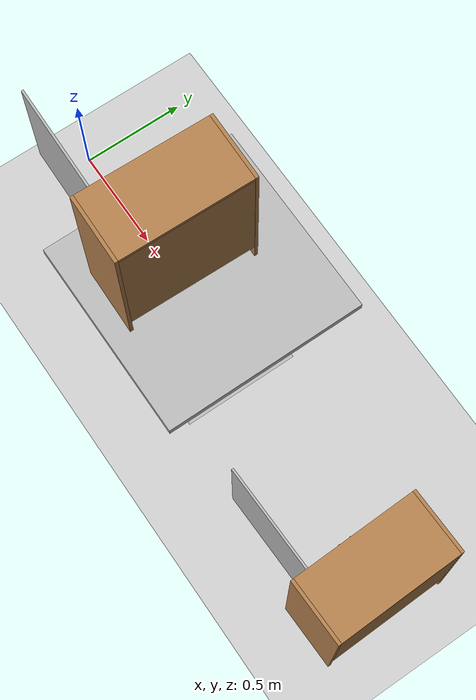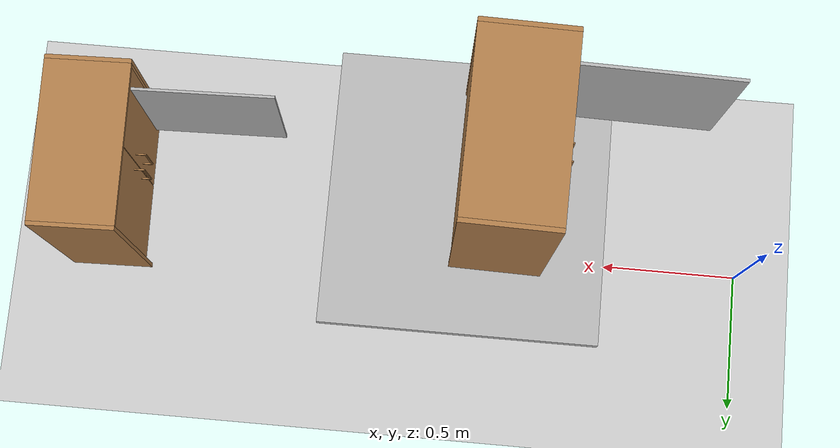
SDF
<sdf version="1.6">
 <world name="default">
  <light name="sun" type="directional">
   <pose>0 0 10 0 -0 0</pose>
   <diffuse>0.8 0.8 0.8 1</diffuse>
   <specular>0.2 0.2 0.2 1</specular>
   <attenuation>
    <range>1000</range>
    <constant>0.9</constant>
    <linear>0.01</linear>
    <quadratic>0.001</quadratic>
   </attenuation>
   <direction>-0.5 0.1 -0.9</direction>
  </light>
  <physics name="dart_2ms" default="1" type="dart">
   <max_step_size>0.002</max_step_size>
   <real_time_factor>1</real_time_factor>
   <real_time_update_rate>500</real_time_update_rate>
  </physics>
  <model name="ground_plane">
   <static>1</static>
   <link name="link">
    <collision name="collision">
     <geometry><plane><normal>0 0 1</normal><size>100 100</size></plane></geometry>
     <surface>
      <contact><collide_bitmask>65535</collide_bitmask></contact>
      <friction><ode><mu>100</mu><mu2>50</mu2></ode></friction>
     </surface>
    </collision>
    <visual name="visual">
     <cast_shadows>0</cast_shadows>
     <geometry><plane><normal>0 0 1</normal><size>100 100</size></plane></geometry>
     <material>
      <script><uri>file://media/materials/scripts/gazebo.material</uri><name>Gazebo/Grey</name></script>
     </material>
    </visual>
   </link>
  </model>
  <gravity>0 0 -9.8</gravity>
  <magnetic_field>6e-06 2.3e-05 -4.2e-05</magnetic_field>
  <atmosphere type="adiabatic"/>
  <scene><ambient>0.4 0.4 0.4 1</ambient><background>0.7 0.7 0.7 1</background><shadows>1</shadows></scene>
  <audio><device>default</device></audio>
  <spherical_coordinates>
   <surface_model>EARTH_WGS84</surface_model>
   <latitude_deg>0</latitude_deg>
   <longitude_deg>0</longitude_deg>
   <elevation>0</elevation>
   <heading_deg>0</heading_deg>
  </spherical_coordinates>
  <model name="cafe_table">
   <static>1</static>
   <link name="link">
    <collision name="surface">
     <pose>0 0 0.755 0 -0 0</pose>
     <geometry><box><size>0.913 0.913 0.04</size></box></geometry>
    </collision>
    <collision name="column">
     <pose>0 0 0.37 0 -0 0</pose>
     <geometry><box><size>0.042 0.042 0.74</size></box></geometry>
    </collision>
    <collision name="base">
     <pose>0 0 0.02 0 -0 0</pose>
     <geometry><box><size>0.56 0.56 0.04</size></box></geometry>
    </collision>
    <visual name="visual">
     <geometry><mesh><uri>model://cafe_table/meshes/cafe_table.dae</uri></mesh></geometry>
    </visual>
   </link>
   <pose>1.06301 -0.05066 0 0 -0 0</pose>
  </model>
  <model name="cabinet_door_fragile">
   <plugin name="BreakableJoint" filename="libbreakable_joint.so">
    <joint_name>right_handle_joint</joint_name>
    <pos_min>-0.05</pos_min>
    <pos_max>0.05</pos_max>
   </plugin>
   <plugin name="BreakableJoint" filename="libbreakable_joint.so">
    <joint_name>right_handle_joint2</joint_name>
    <pos_min>-0.05</pos_min>
    <pos_max>0.05</pos_max>
   </plugin>
   <plugin name="BreakableJoint" filename="libbreakable_joint.so">
    <joint_name>left_handle_joint</joint_name>
    <pos_min>-0.05</pos_min>
    <pos_max>0.05</pos_max>
   </plugin>
   <plugin name="BreakableJoint" filename="libbreakable_joint.so">
    <joint_name>left_handle_joint2</joint_name>
    <pos_min>-0.05</pos_min>
    <pos_max>0.05</pos_max>
   </plugin>
   <link name="cabinet">
    <pose>0 0 0.35 0 -0 0</pose>
    <inertial>
     <mass>16</mass>
     <inertia><ixx>1.59</ixx><ixy>0</ixy><ixz>0</ixz><iyy>1.12</iyy><iyz>0</iyz><izz>0.91</izz></inertia>
    </inertial>
    <collision name="back">
     <pose>-0.14 0 0.035 0 -0 0</pose>
     <geometry><box><size>0.015 0.585 0.6</size></box></geometry>
    </collision>
    <visual name="visual1">
     <pose>-0.14 0 0.035 0 -0 0</pose>
     <geometry><box><size>0.015 0.585 0.6</size></box></geometry>
     <material>
      <script><uri>file://media/materials/scripts/gazebo.material</uri><name>Gazebo/Wood</name></script>
     </material>
    </visual>
    <collision name="left_side">
     <pose>0 -0.2925 0 0 -0 0</pose>
     <geometry><box><size>0.3 0.015 0.7</size></box></geometry>
    </collision>
    <visual name="visual2">
     <pose>0 -0.2925 0 0 -0 0</pose>
     <geometry><box><size>0.3 0.015 0.7</size></box></geometry>
     <material>
      <script><uri>file://media/materials/scripts/gazebo.material</uri><name>Gazebo/Wood</name></script>
     </material>
    </visual>
    <collision name="right_side">
     <pose>0 0.2925 0 0 -0 0</pose>
     <geometry><box><size>0.3 0.015 0.7</size></box></geometry>
    </collision>
    <visual name="visual3">
     <pose>0 0.2925 0 0 -0 0</pose>
     <geometry><box><size>0.3 0.015 0.7</size></box></geometry>
     <material>
      <script><uri>file://media/materials/scripts/gazebo.material</uri><name>Gazebo/Wood</name></script>
     </material>
    </visual>
    <collision name="bottom">
     <pose>-0.002 0 -0.2525 0 -0 0</pose>
     <geometry><box><size>0.26 0.57 0.015</size></box></geometry>
    </collision>
    <visual name="visual4">
     <pose>-0.002 0 -0.2525 0 -0 0</pose>
     <geometry><box><size>0.26 0.57 0.015</size></box></geometry>
     <material>
      <script><uri>file://media/materials/scripts/gazebo.material</uri><name>Gazebo/Wood</name></script>
     </material>
    </visual>
    <collision name="top">
     <pose>0 0 0.3425 0 -0 0</pose>
     <geometry><box><size>0.3 0.57 0.015</size></box></geometry>
    </collision>
    <visual name="visual5">
     <pose>0 0 0.3425 0 -0 0</pose>
     <geometry><box><size>0.3 0.57 0.015</size></box></geometry>
     <material>
      <script><uri>file://media/materials/scripts/gazebo.material</uri><name>Gazebo/Wood</name></script>
     </material>
    </visual>
    <collision name="middle_shelf">
     <pose>-0.002 0 0.0475 0 -0 0</pose>
     <geometry><box><size>0.26 0.57 0.015</size></box></geometry>
    </collision>
    <visual name="visual6">
     <pose>-0.002 0 0.0475 0 -0 0</pose>
     <geometry><box><size>0.26 0.57 0.015</size></box></geometry>
     <material>
      <script><uri>file://media/materials/scripts/gazebo.material</uri><name>Gazebo/Wood</name></script>
     </material>
    </visual>
    <collision name="low_front">
     <pose>0.115 0 -0.3025 0 -0 0</pose>
     <geometry><box><size>0.015 0.57 0.09</size></box></geometry>
    </collision>
    <visual name="visual7">
     <pose>0.115 0 -0.3025 0 -0 0</pose>
     <geometry><box><size>0.015 0.57 0.09</size></box></geometry>
     <material>
      <script><uri>file://media/materials/scripts/gazebo.material</uri><name>Gazebo/Wood</name></script>
     </material>
    </visual>
   </link>
   <link name="right_door">
    <pose>0.135 0.2835 0.3875 0 -0 0</pose>
    <inertial>
     <mass>1.7</mass>
     <pose>0 -0.141 0 0 -0 0</pose>
     <inertia><ixx>0.06</ixx><ixy>0</ixy><ixz>0</ixz><iyy>0.49</iyy><iyz>0</iyz><izz>0.111</izz></inertia>
    </inertial>
    <collision name="right_face">
     <pose>0 -0.141 0 0 -0 0</pose>
     <geometry><box><size>0.015 0.282 0.595</size></box></geometry>
    </collision>
    <visual name="right_face_vis">
     <pose>0 -0.141 0 0 -0 0</pose>
     <geometry><box><size>0.015 0.282 0.595</size></box></geometry>
     <material>
      <script><uri>file://media/materials/scripts/gazebo.material</uri><name>Gazebo/Wood</name></script>
     </material>
    </visual>
    <collision name="right_handle_up">
     <pose>0.02475 -0.2555 0.0656 0 -0 0</pose>
     <geometry><box><size>0.04 0.005 0.005</size></box></geometry>
    </collision>
    <visual name="right_handle_up_vis">
     <pose>0.02475 -0.2555 0.0656 0 -0 0</pose>
     <geometry><box><size>0.04 0.005 0.005</size></box></geometry>
     <material>
      <script><uri>file://media/materials/scripts/gazebo.material</uri><name>Gazebo/Wood</name></script>
     </material>
    </visual>
    <collision name="right_handle_bo">
     <pose>0.02475 -0.2555 -0.06542 0 -0 0</pose>
     <geometry><box><size>0.04 0.005 0.005</size></box></geometry>
    </collision>
    <visual name="right_handle_bo_vis">
     <pose>0.02475 -0.2555 -0.06542 0 -0 0</pose>
     <geometry><box><size>0.04 0.005 0.005</size></box></geometry>
     <material>
      <script><uri>file://media/materials/scripts/gazebo.material</uri><name>Gazebo/Wood</name></script>
     </material>
    </visual>
    <visual name="visual_marker_0">
     <pose>0.007 -0.07 0 1.57075 0 1.57075</pose>
     <geometry><mesh><uri>model://marker_0/meshes/marker_0.dae</uri></mesh></geometry>
    </visual>
   </link>
   <joint name="right_handle_joint" type="revolute">
    <parent>right_door</parent>
    <child>right_handle_dummy</child>
    <axis>
     <xyz>0 1 0</xyz>
     <limit><lower>-3.1</lower><upper>3.1</upper></limit>
     <dynamics>
      <damping>0.01</damping>
      <friction>1</friction>
      <spring_reference>0</spring_reference>
      <spring_stiffness>0</spring_stiffness>
     </dynamics>
     <use_parent_model_frame>1</use_parent_model_frame>
    </axis>
   </joint>
   <link name="right_handle_dummy">
    <pose>0.17804 0.028 0.3195 0 -0 0</pose>
    <inertial>
     <mass>0.1</mass>
     <pose>0 0 0.068 0 -0 0</pose>
     <inertia>
      <ixx>0.000154133</ixx>
      <ixy>0</ixy>
      <ixz>0</ixz>
      <iyy>0.000154133</iyy>
      <iyz>0</iyz>
      <izz>0.000154133</izz>
     </inertia>
    </inertial>
   </link>
   <joint name="right_handle_joint2" type="revolute">
    <parent>right_handle_dummy</parent>
    <child>right_handle</child>
    <axis>
     <xyz>1 0 0</xyz>
     <limit><lower>-3.1</lower><upper>3.1</upper></limit>
     <dynamics>
      <damping>0.01</damping>
      <friction>1</friction>
      <spring_reference>0</spring_reference>
      <spring_stiffness>0</spring_stiffness>
     </dynamics>
     <use_parent_model_frame>1</use_parent_model_frame>
    </axis>
   </joint>
   <link name="right_handle">
    <pose>0.17804 0.028 0.3195 0 -0 0</pose>
    <inertial>
     <mass>0.1</mass>
     <pose>0 0 0.068 0 -0 0</pose>
     <inertia>
      <ixx>0.000154133</ixx>
      <ixy>0</ixy>
      <ixz>0</ixz>
      <iyy>0.000154133</iyy>
      <iyz>0</iyz>
      <izz>0.000154133</izz>
     </inertia>
    </inertial>
    <collision name="right_handle">
     <pose>0 0 0.068 0 -0 0</pose>
     <geometry><box><size>0.005 0.005 0.136</size></box></geometry>
    </collision>
    <visual name="right_handle_vis">
     <pose>0 0 0.068 0 -0 0</pose>
     <geometry><box><size>0.005 0.005 0.136</size></box></geometry>
     <material>
      <script><uri>file://media/materials/scripts/gazebo.material</uri><name>Gazebo/Wood</name></script>
     </material>
    </visual>
   </link>
   <joint name="right_joint" type="revolute">
    <parent>cabinet</parent>
    <child>right_door</child>
    <axis>
     <xyz>0 0 1</xyz>
     <limit><lower>-0.001</lower><upper>2.36</upper></limit>
     <dynamics>
      <damping>0.5</damping>
      <friction>0.1</friction>
      <spring_reference>0</spring_reference>
      <spring_stiffness>0</spring_stiffness>
     </dynamics>
     <use_parent_model_frame>1</use_parent_model_frame>
    </axis>
   </joint>
   <link name="left_door">
    <pose>0.135 -0.2835 0.3875 0 -0 0</pose>
    <inertial>
     <mass>1</mass>
     <pose>0 0.141 0 0 -0 0</pose>
     <inertia><ixx>0.06</ixx><ixy>0</ixy><ixz>0</ixz><iyy>0.49</iyy><iyz>0</iyz><izz>0.111</izz></inertia>
    </inertial>
    <collision name="left_face">
     <pose>0 0.141 0 0 -0 0</pose>
     <geometry><box><size>0.015 0.282 0.595</size></box></geometry>
    </collision>
    <visual name="left_face_vis">
     <pose>0 0.141 0 0 -0 0</pose>
     <geometry><box><size>0.015 0.282 0.595</size></box></geometry>
     <material>
      <script><uri>file://media/materials/scripts/gazebo.material</uri><name>Gazebo/Wood</name></script>
     </material>
    </visual>
    <collision name="left_handle_up">
     <pose>0.02475 0.2555 0.0656 0 -0 0</pose>
     <geometry><box><size>0.04 0.005 0.005</size></box></geometry>
    </collision>
    <visual name="left_handle_up_vis">
     <pose>0.02475 0.2555 0.0656 0 -0 0</pose>
     <geometry><box><size>0.04 0.005 0.005</size></box></geometry>
     <material>
      <script><uri>file://media/materials/scripts/gazebo.material</uri><name>Gazebo/Wood</name></script>
     </material>
    </visual>
    <collision name="left_handle_bo">
     <pose>0.02475 0.2555 -0.06542 0 -0 0</pose>
     <geometry><box><size>0.04 0.005 0.005</size></box></geometry>
    </collision>
    <visual name="left_handle_bo_vis">
     <pose>0.02475 0.2555 -0.06542 0 -0 0</pose>
     <geometry><box><size>0.04 0.005 0.005</size></box></geometry>
     <material>
      <script><uri>file://media/materials/scripts/gazebo.material</uri><name>Gazebo/Wood</name></script>
     </material>
    </visual>
   </link>
   <joint name="left_joint" type="revolute">
    <parent>cabinet</parent>
    <child>left_door</child>
    <axis>
     <xyz>0 0 1</xyz>
     <limit><lower>-2.36</lower><upper>0.001</upper></limit>
     <dynamics>
      <damping>0.5</damping>
      <friction>0.1</friction>
      <spring_reference>0</spring_reference>
      <spring_stiffness>0</spring_stiffness>
     </dynamics>
     <use_parent_model_frame>1</use_parent_model_frame>
    </axis>
   </joint>
   <joint name="left_handle_joint" type="revolute">
    <parent>left_door</parent>
    <child>left_handle_dummy</child>
    <axis>
     <xyz>0 1 0</xyz>
     <limit><lower>-3.1</lower><upper>3.1</upper></limit>
     <dynamics>
      <damping>0.01</damping>
      <friction>1</friction>
      <spring_reference>0</spring_reference>
      <spring_stiffness>0</spring_stiffness>
     </dynamics>
     <use_parent_model_frame>1</use_parent_model_frame>
    </axis>
   </joint>
   <link name="left_handle_dummy">
    <pose>0.17804 -0.028 0.3195 0 -0 0</pose>
    <inertial>
     <mass>0.1</mass>
     <pose>0 0 0.068 0 -0 0</pose>
     <inertia>
      <ixx>0.000154133</ixx>
      <ixy>0</ixy>
      <ixz>0</ixz>
      <iyy>0.000154133</iyy>
      <iyz>0</iyz>
      <izz>0.000154133</izz>
     </inertia>
    </inertial>
   </link>
   <joint name="left_handle_joint2" type="revolute">
    <parent>left_handle_dummy</parent>
    <child>left_handle</child>
    <axis>
     <xyz>1 0 0</xyz>
     <limit><lower>-3.1</lower><upper>3.1</upper></limit>
     <dynamics>
      <damping>0.01</damping>
      <friction>1</friction>
      <spring_reference>0</spring_reference>
      <spring_stiffness>0</spring_stiffness>
     </dynamics>
     <use_parent_model_frame>1</use_parent_model_frame>
    </axis>
   </joint>
   <link name="left_handle">
    <pose>0.17804 -0.028 0.3195 0 -0 0</pose>
    <inertial>
     <mass>0.1</mass>
     <pose>0 0 0.068 0 -0 0</pose>
     <inertia>
      <ixx>0.000154133</ixx>
      <ixy>0</ixy>
      <ixz>0</ixz>
      <iyy>0.000154133</iyy>
      <iyz>0</iyz>
      <izz>0.000154133</izz>
     </inertia>
    </inertial>
    <collision name="left_handle">
     <pose>0 0 0.068 0 -0 0</pose>
     <geometry><box><size>0.005 0.005 0.136</size></box></geometry>
    </collision>
    <visual name="left_handle_vis">
     <pose>0 0 0.068 0 -0 0</pose>
     <geometry><box><size>0.005 0.005 0.136</size></box></geometry>
     <material>
      <script><uri>file://media/materials/scripts/gazebo.material</uri><name>Gazebo/Wood</name></script>
     </material>
    </visual>
   </link>
   <pose>2.38639 -0.14426 -0 -0 -0 -3.11567</pose>
  </model>
  <model name="cabinet_door">
   <link name="cabinet">
    <pose>0 0 0.35 0 -0 0</pose>
    <inertial>
     <mass>16</mass>
     <inertia><ixx>1.59</ixx><ixy>0</ixy><ixz>0</ixz><iyy>1.12</iyy><iyz>0</iyz><izz>0.91</izz></inertia>
    </inertial>
    <collision name="back">
     <pose>-0.14 0 0.035 0 -0 0</pose>
     <geometry><box><size>0.015 0.585 0.6</size></box></geometry>
    </collision>
    <visual name="visual1">
     <pose>-0.14 0 0.035 0 -0 0</pose>
     <geometry><box><size>0.015 0.585 0.6</size></box></geometry>
     <material>
      <script><uri>file://media/materials/scripts/gazebo.material</uri><name>Gazebo/Wood</name></script>
     </material>
    </visual>
    <collision name="left_side">
     <pose>0 -0.2925 0 0 -0 0</pose>
     <geometry><box><size>0.3 0.015 0.7</size></box></geometry>
    </collision>
    <visual name="visual2">
     <pose>0 -0.2925 0 0 -0 0</pose>
     <geometry><box><size>0.3 0.015 0.7</size></box></geometry>
     <material>
      <script><uri>file://media/materials/scripts/gazebo.material</uri><name>Gazebo/Wood</name></script>
     </material>
    </visual>
    <collision name="right_side">
     <pose>0 0.2925 0 0 -0 0</pose>
     <geometry><box><size>0.3 0.015 0.7</size></box></geometry>
    </collision>
    <visual name="visual3">
     <pose>0 0.2925 0 0 -0 0</pose>
     <geometry><box><size>0.3 0.015 0.7</size></box></geometry>
     <material>
      <script><uri>file://media/materials/scripts/gazebo.material</uri><name>Gazebo/Wood</name></script>
     </material>
    </visual>
    <collision name="bottom">
     <pose>-0.002 0 -0.2525 0 -0 0</pose>
     <geometry><box><size>0.26 0.57 0.015</size></box></geometry>
    </collision>
    <visual name="visual4">
     <pose>-0.002 0 -0.2525 0 -0 0</pose>
     <geometry><box><size>0.26 0.57 0.015</size></box></geometry>
     <material>
      <script><uri>file://media/materials/scripts/gazebo.material</uri><name>Gazebo/Wood</name></script>
     </material>
    </visual>
    <collision name="top">
     <pose>0 0 0.3425 0 -0 0</pose>
     <geometry><box><size>0.3 0.57 0.015</size></box></geometry>
    </collision>
    <visual name="visual5">
     <pose>0 0 0.3425 0 -0 0</pose>
     <geometry><box><size>0.3 0.57 0.015</size></box></geometry>
     <material>
      <script><uri>file://media/materials/scripts/gazebo.material</uri><name>Gazebo/Wood</name></script>
     </material>
    </visual>
    <collision name="middle_shelf">
     <pose>-0.002 0 0.0475 0 -0 0</pose>
     <geometry><box><size>0.26 0.57 0.015</size></box></geometry>
    </collision>
    <visual name="visual6">
     <pose>-0.002 0 0.0475 0 -0 0</pose>
     <geometry><box><size>0.26 0.57 0.015</size></box></geometry>
     <material>
      <script><uri>file://media/materials/scripts/gazebo.material</uri><name>Gazebo/Wood</name></script>
     </material>
    </visual>
    <collision name="low_front">
     <pose>0.115 0 -0.3025 0 -0 0</pose>
     <geometry><box><size>0.015 0.57 0.09</size></box></geometry>
    </collision>
    <visual name="visual7">
     <pose>0.115 0 -0.3025 0 -0 0</pose>
     <geometry><box><size>0.015 0.57 0.09</size></box></geometry>
     <material>
      <script><uri>file://media/materials/scripts/gazebo.material</uri><name>Gazebo/Wood</name></script>
     </material>
    </visual>
   </link>
   <link name="right_door">
    <pose>0.135 0.2835 0.3875 0 -0 0</pose>
    <inertial>
     <mass>1.7</mass>
     <pose>0 -0.141 0 0 -0 0</pose>
     <inertia><ixx>0.06</ixx><ixy>0</ixy><ixz>0</ixz><iyy>0.49</iyy><iyz>0</iyz><izz>0.111</izz></inertia>
    </inertial>
    <collision name="right_face">
     <pose>0 -0.141 0 0 -0 0</pose>
     <geometry><box><size>0.015 0.282 0.595</size></box></geometry>
    </collision>
    <visual name="visual8">
     <pose>0 -0.141 0 0 -0 0</pose>
     <geometry><box><size>0.015 0.282 0.595</size></box></geometry>
     <material>
      <script><uri>file://media/materials/scripts/gazebo.material</uri><name>Gazebo/Wood</name></script>
     </material>
    </visual>
    <collision name="right_handle">
     <pose>0.04304 -0.2555 0 0 -0 0</pose>
     <geometry><box><size>0.005 0.005 0.136</size></box></geometry>
    </collision>
    <visual name="visual9">
     <pose>0.04304 -0.2555 0 0 -0 0</pose>
     <geometry><box><size>0.005 0.005 0.136</size></box></geometry>
     <material>
      <script><uri>file://media/materials/scripts/gazebo.material</uri><name>Gazebo/Wood</name></script>
     </material>
    </visual>
    <collision name="right_handle_up">
     <pose>0.02475 -0.2555 0.0656 0 -0 0</pose>
     <geometry><box><size>0.04 0.005 0.005</size></box></geometry>
    </collision>
    <visual name="visual10">
     <pose>0.02475 -0.2555 0.0656 0 -0 0</pose>
     <geometry><box><size>0.04 0.005 0.005</size></box></geometry>
     <material>
      <script><uri>file://media/materials/scripts/gazebo.material</uri><name>Gazebo/Wood</name></script>
     </material>
    </visual>
    <collision name="right_handle_bo">
     <pose>0.02475 -0.2555 -0.06542 0 -0 0</pose>
     <geometry><box><size>0.04 0.005 0.005</size></box></geometry>
    </collision>
    <visual name="visual11">
     <pose>0.02475 -0.2555 -0.06542 0 -0 0</pose>
     <geometry><box><size>0.04 0.005 0.005</size></box></geometry>
     <material>
      <script><uri>file://media/materials/scripts/gazebo.material</uri><name>Gazebo/Wood</name></script>
     </material>
    </visual>
    <visual name="visual_marker_0">
     <pose>0.007 -0.07 0 1.57075 0 1.57075</pose>
     <geometry><mesh><uri>model://marker_0/meshes/marker_0.dae</uri></mesh></geometry>
    </visual>
   </link>
   <joint name="right_joint" type="revolute">
    <parent>cabinet</parent>
    <child>right_door</child>
    <axis>
     <xyz>0 0 1</xyz>
     <limit><lower>-0.001</lower><upper>2.36</upper></limit>
     <dynamics>
      <damping>0.5</damping>
      <friction>0.1</friction>
      <spring_reference>0</spring_reference>
      <spring_stiffness>0</spring_stiffness>
     </dynamics>
     <use_parent_model_frame>1</use_parent_model_frame>
    </axis>
   </joint>
   <link name="left_door">
    <pose>0.135 -0.2835 0.3875 0 -0 0</pose>
    <inertial>
     <mass>1</mass>
     <pose>0 0.141 0 0 -0 0</pose>
     <inertia><ixx>0.06</ixx><ixy>0</ixy><ixz>0</ixz><iyy>0.49</iyy><iyz>0</iyz><izz>0.111</izz></inertia>
    </inertial>
    <collision name="left_face">
     <pose>0 0.141 0 0 -0 0</pose>
     <geometry><box><size>0.015 0.282 0.595</size></box></geometry>
    </collision>
    <visual name="visual12">
     <pose>0 0.141 0 0 -0 0</pose>
     <geometry><box><size>0.015 0.282 0.595</size></box></geometry>
     <material>
      <script><uri>file://media/materials/scripts/gazebo.material</uri><name>Gazebo/Wood</name></script>
     </material>
    </visual>
    <collision name="left_handle">
     <pose>0.04304 0.2555 0 0 -0 0</pose>
     <geometry><box><size>0.005 0.005 0.136</size></box></geometry>
    </collision>
    <visual name="visual13">
     <pose>0.04304 0.2555 0 0 -0 0</pose>
     <geometry><box><size>0.005 0.005 0.136</size></box></geometry>
     <material>
      <script><uri>file://media/materials/scripts/gazebo.material</uri><name>Gazebo/Wood</name></script>
     </material>
    </visual>
    <collision name="left_handle_up">
     <pose>0.02475 0.2555 0.0656 0 -0 0</pose>
     <geometry><box><size>0.04 0.005 0.005</size></box></geometry>
    </collision>
    <visual name="visual14">
     <pose>0.02475 0.2555 0.0656 0 -0 0</pose>
     <geometry><box><size>0.04 0.005 0.005</size></box></geometry>
     <material>
      <script><uri>file://media/materials/scripts/gazebo.material</uri><name>Gazebo/Wood</name></script>
     </material>
    </visual>
    <collision name="left_handle_bo">
     <pose>0.02475 0.2555 -0.06542 0 -0 0</pose>
     <geometry><box><size>0.04 0.005 0.005</size></box></geometry>
    </collision>
    <visual name="visual15">
     <pose>0.02475 0.2555 -0.06542 0 -0 0</pose>
     <geometry><box><size>0.04 0.005 0.005</size></box></geometry>
     <material>
      <script><uri>file://media/materials/scripts/gazebo.material</uri><name>Gazebo/Wood</name></script>
     </material>
    </visual>
   </link>
   <joint name="left_joint" type="revolute">
    <parent>cabinet</parent>
    <child>left_door</child>
    <axis>
     <xyz>0 0 1</xyz>
     <limit><lower>-2.36</lower><upper>0.001</upper></limit>
     <dynamics>
      <damping>0.5</damping>
      <friction>0.1</friction>
      <spring_reference>0</spring_reference>
      <spring_stiffness>0</spring_stiffness>
     </dynamics>
     <use_parent_model_frame>1</use_parent_model_frame>
    </axis>
   </joint>
   <pose>0.952703 -0.107541 0.775001 -0 -4e-06 3.12167</pose>
  </model>
 </world>
</sdf>
